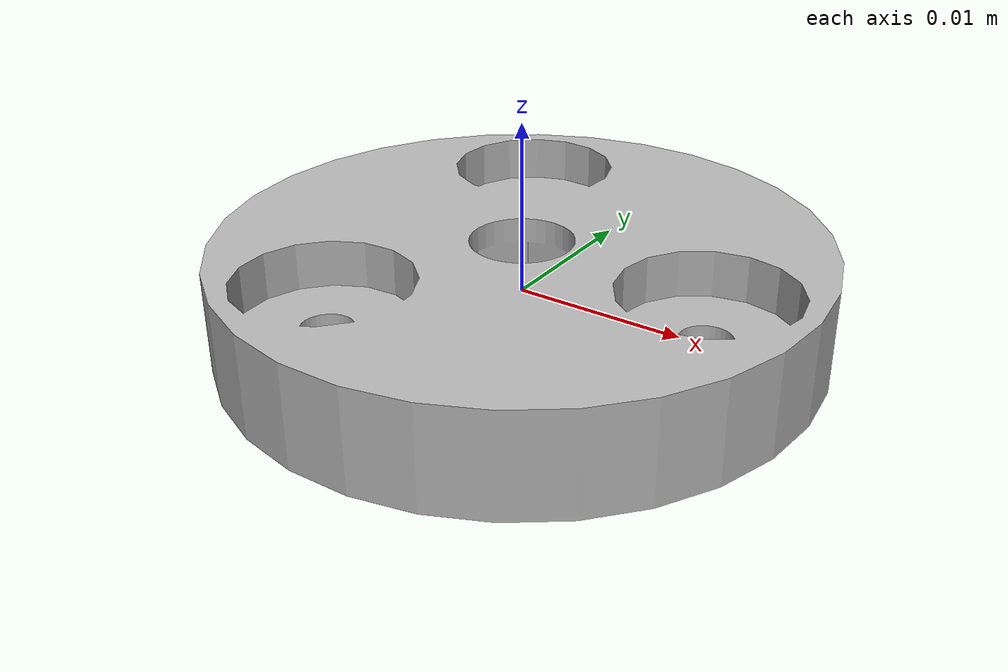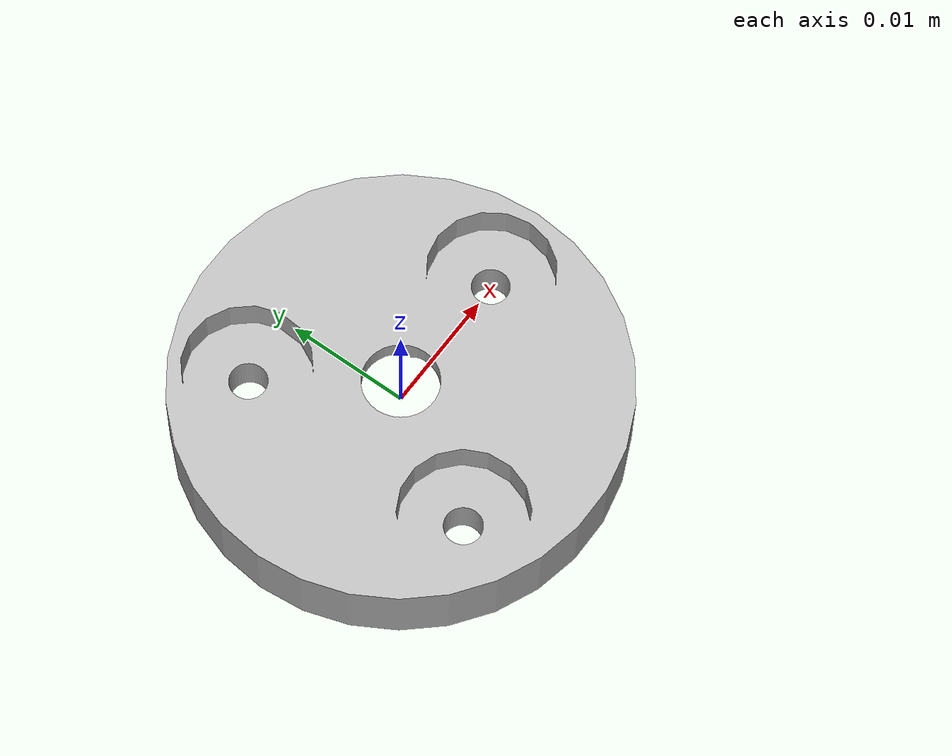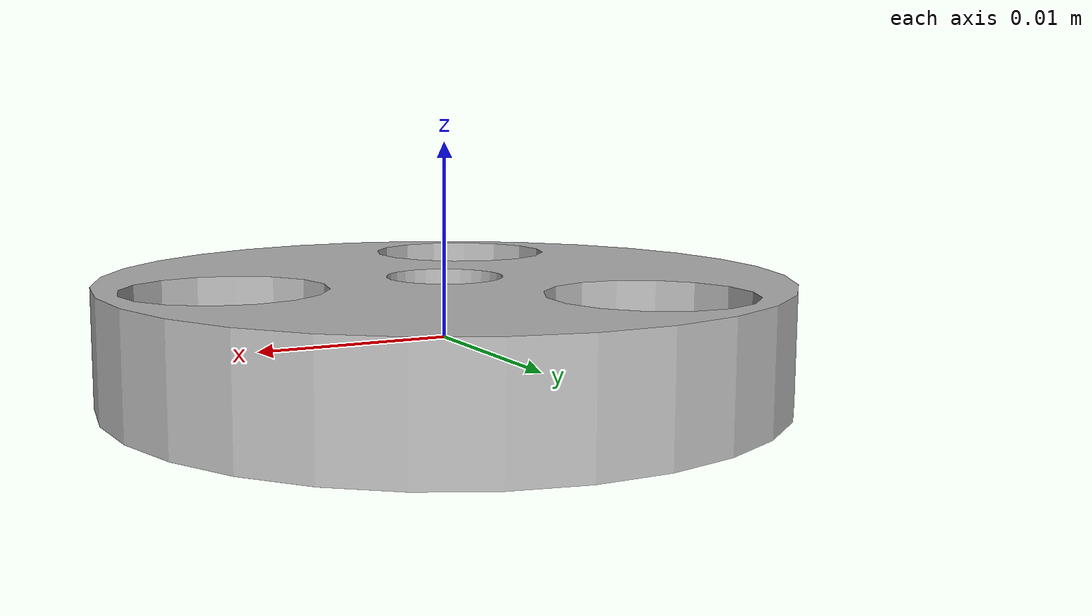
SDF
<?xml version="1.0" ?>
<sdf version="1.5">
  <model name="carrier">
    <static>false</static>
    <link name="link">
      <collision name="collision">
        <geometry>
          <mesh>
            <scale>1 1 1</scale>
            <uri>model://Nema/carrier/carrier.dae</uri>
          </mesh>
        </geometry>
      </collision>
      <visual name="visual">
        <geometry>
          <mesh>
            <scale>1 1 1</scale>
            <uri>model://Nema/carrier/carrier.dae</uri>
          </mesh>
        </geometry>
      </visual>
    </link>
  </model>
</sdf>
